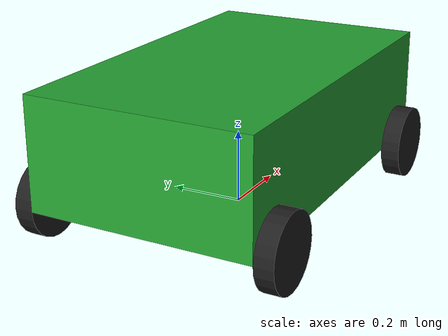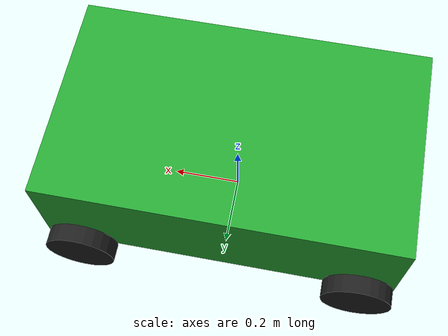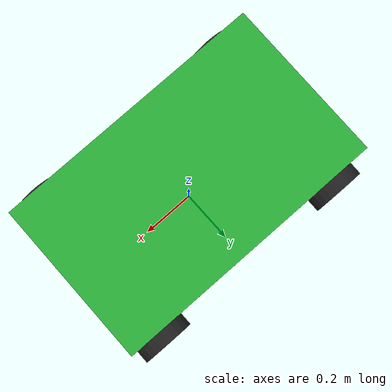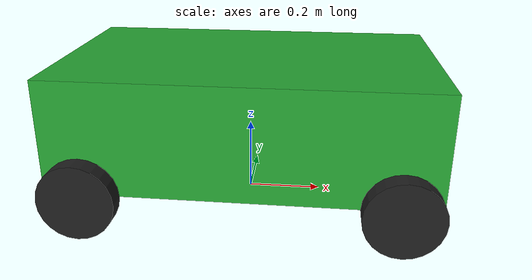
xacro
<?xml version="1.0"?>
<robot xmlns:xacro="http://www.ros.org/wiki/xacro">
    <xacro:property name="base_length" value="1.0"/>
    <xacro:property name="base_width" value="0.6"/>
    <xacro:property name="base_height" value="0.3"/>
    <xacro:property name="wheel_radius" value="0.1"/>
    <xacro:property name="wheel_height" value="0.05"/>

    <xacro:property name="base_mass" value="3.0"/>
    <xacro:property name="wheel_mass" value="1.0"/>

    <xacro:property name="steering_link_radius" value="0.01"/>
    <xacro:property name="steering_link_length" value="0.01"/>
    <xacro:property name="steering_link_mass" value="1"/>

    <link name="base_footprint"/>

    <link name="base_link">
        <visual>
            <geometry>
                <box size="${base_length} ${base_width} ${base_height}"/>
            </geometry>
            <origin xyz="0 0 ${(base_height) / 2.0}" rpy="0 0 0"/>
            <material name="olive green"/>
        </visual>
        <collision>
            <geometry>
                <box size="${base_length} ${base_width} ${base_height}"/>
            </geometry>
            <origin xyz="0 0 ${base_height / 2.0}" rpy="0 0 0"/>
        </collision>
        <xacro:box_inertia m="${base_mass}" l="${base_length}" w="${base_width}" h="${base_height}" xyz="0 0 ${base_height / 2.0}" rpy="0 0 0"/>
    </link>

    <xacro:macro name="wheel_link" params="prefix">
        <link name="${prefix}_wheel_link">
            <visual>
                <geometry>
                    <cylinder radius="${wheel_radius}" length="${wheel_height}"/>
                </geometry>
                <origin xyz="0 0 0" rpy="${pi / 2.0} 0 0"/>
                <material name="black"/>
            </visual>
            <collision>
                <geometry>
                    <cylinder radius="${wheel_radius}" length="${wheel_height}"/>
                </geometry>
                <origin xyz="0 0 0" rpy="${pi / 2.0} 0 0"/>
            </collision>
            <xacro:cylinder_inertia m="${wheel_mass}" r="${2*wheel_radius}" h="${2*wheel_height}" xyz="0 0 0" rpy="${pi / 2.0} 0 0" />
        </link>
    </xacro:macro>

    <xacro:wheel_link prefix="rear_right"/>
    <xacro:wheel_link prefix="rear_left"/>
    <xacro:wheel_link prefix="front_left"/>
    <xacro:wheel_link prefix="front_right"/>

    <xacro:macro name="steering_wheel_link" params="prefix">
        <link name="${prefix}_steering_wheel_link">
            <visual>
                <geometry>
                    <cylinder radius="${steering_link_radius}" length="${steering_link_length}"/>
                </geometry>
                <origin xyz="0 0 0" rpy="${pi/2.0} 0 0"/>
                <material name="blue"/>
            </visual>
            <collision>
                <geometry>
                    <cylinder radius="${steering_link_radius}" length="${steering_link_length}"/>
                </geometry>
                <origin xyz="0 0 0" rpy="${pi/2.0} 0 0"/>
            </collision>
            <xacro:cylinder_inertia m="${steering_link_mass}" r="${2*steering_link_radius}" h="${2*steering_link_length}" xyz="0 0 0" rpy="${pi/2.0} 0 0" />
        </link>
    </xacro:macro>

    <xacro:steering_wheel_link prefix="front_left"/>
    <xacro:steering_wheel_link prefix="front_right"/>

    <joint name="base_footprint_joint" type="fixed">
        <parent link="base_footprint"/>
        <child link="base_link"/>
        <origin xyz="0 0 ${wheel_radius}" rpy="0 0 0"/>
    </joint>

    <joint name="base_rear_right_wheel_joint" type="continuous">
        <parent link="base_link"/>
        <child link="rear_right_wheel_link"/>
        <origin xyz="${(base_length / 2.0) - (wheel_radius)} ${(base_width + wheel_height) / 2.0} 0" rpy="0 0 0"/>
        <axis xyz="0 1 0"/>
    </joint>

    <joint name="base_rear_left_wheel_joint" type="continuous">
        <parent link="base_link"/>
        <child link="rear_left_wheel_link"/>
        <origin xyz="${(base_length / 2.0) - (wheel_radius)} ${-(base_width + wheel_height) / 2.0} 0" rpy="0 0 0"/>
        <axis xyz="0 1 0"/>
    </joint>

    <joint name="steering_front_right_wheel_joint" type="continuous">
        <parent link="front_right_steering_wheel_link"/>
        <child link="front_right_wheel_link"/>
        <origin xyz="0 0 0" rpy="0 0 0"/>
        <axis xyz="0 1 0"/>
    </joint>

    <joint name="steering_front_left_wheel_joint" type="continuous">
        <parent link="front_left_steering_wheel_link"/>
        <child link="front_left_wheel_link"/>
        <origin xyz="0 0 0" rpy="0 0 0"/>
        <axis xyz="0 1 0"/>
    </joint>

    <joint name="base_front_left_steering_wheel_joint" type="revolute">
        <parent link="base_link"/>
        <child link="front_left_steering_wheel_link"/>
        <origin xyz="${-((base_length / 2.0) - (wheel_radius))} ${-(base_width + wheel_height) / 2.0} 0" rpy="0 0 0"/>
        <limit effort="100" velocity="100" lower="${-pi / 4.0}" upper="${pi / 4.0}"/>
        <dynamics friction="0.2" damping="0.2"/>
        <axis xyz="0 0 1" />
    </joint>

    <joint name="base_front_right_steering_wheel_joint" type="revolute">
        <parent link="base_link"/>
        <child link="front_right_steering_wheel_link"/>
        <origin xyz="${-((base_length / 2.0) - (wheel_radius))} ${(base_width + wheel_height) / 2.0} 0" rpy="0 0 0"/>
        <limit effort="100" velocity="100" lower="${-pi / 4.0}" upper="${pi / 4.0}"/>
        <dynamics friction="0.2" damping="0.2"/>
        <axis xyz="0 0 1" />
    </joint>
</robot>
